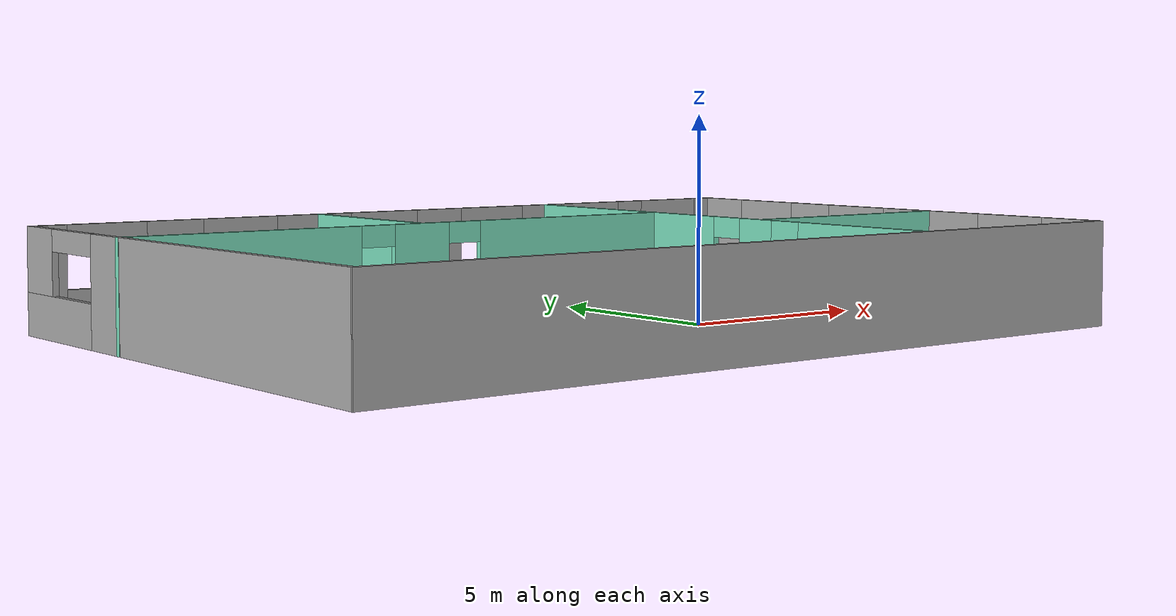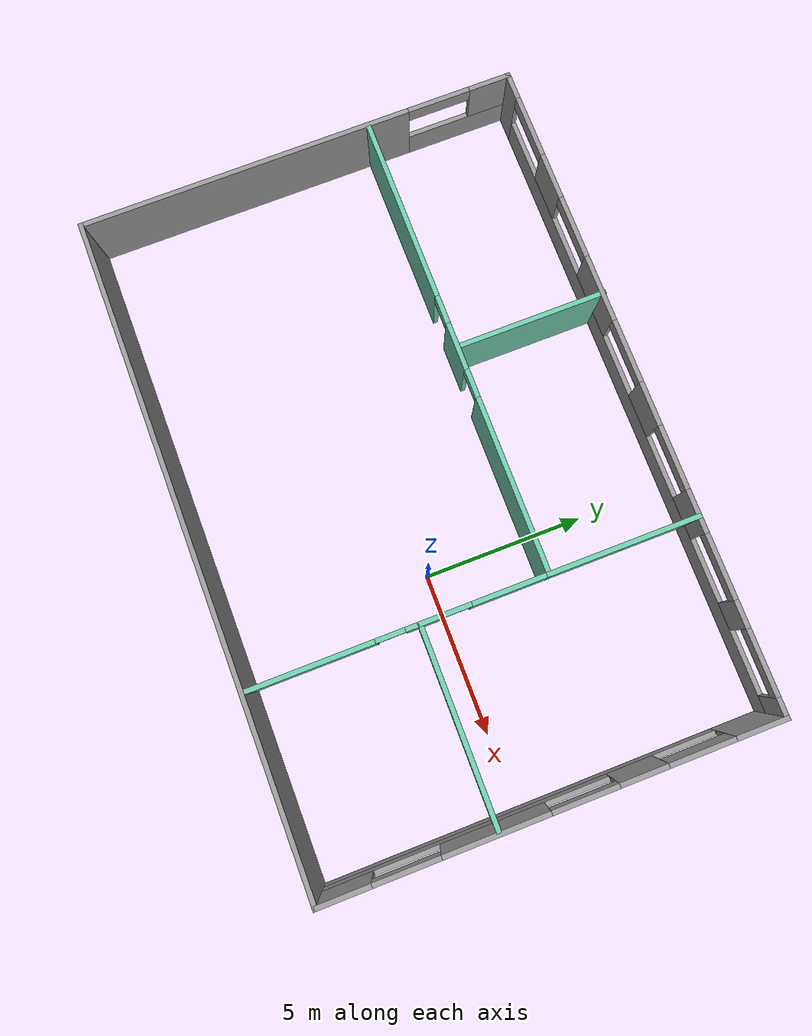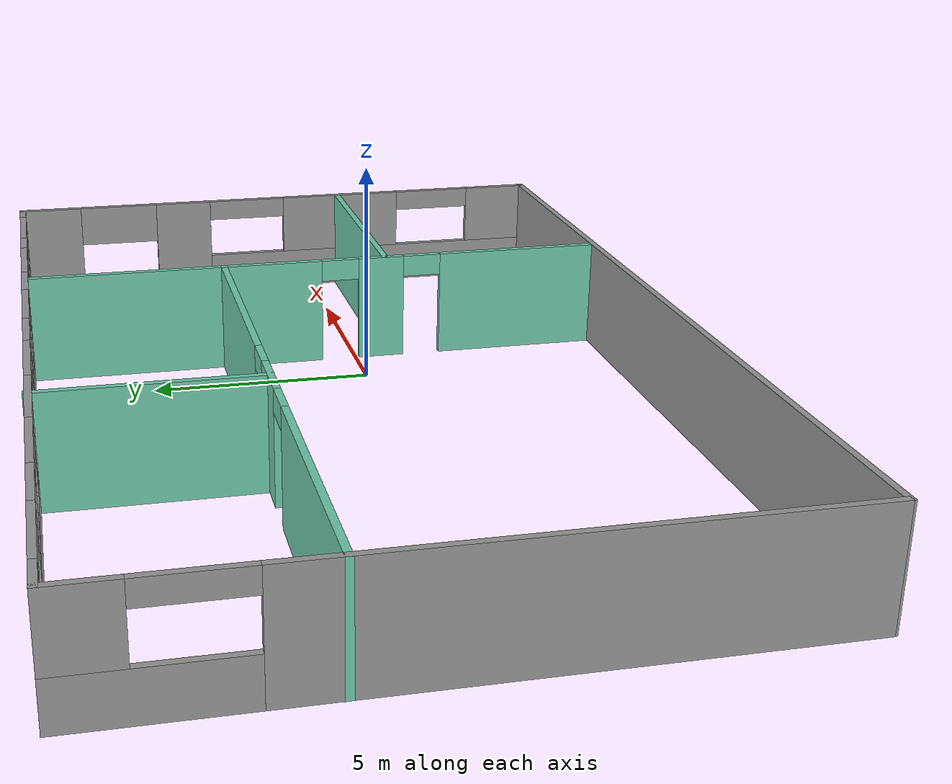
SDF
<?xml version='1.0'?>
<sdf version='1.6'>
  <model name='myBuilding'>
    <pose frame=''>-3.02862 0.882454 0 0 -0 0</pose>
    <link name='Wall_1'>
      <pose frame=''>0.002237 6.86535 0 0 -0 0</pose>
      <visual name='Wall_1_Visual_0'>
        <pose frame=''>-9.92957 0 1.25 0 -0 0</pose>
        <geometry>
          <box>
            <size>0.890861 0.15 2.5</size>
          </box>
        </geometry>
        <material>
          <script>
            <uri>file://media/materials/scripts/gazebo.material</uri>
            <name>Gazebo/Grey</name>
          </script>
          <ambient>1 1 1 1</ambient>
        </material>
        <meta>
          <layer>0</layer>
        </meta>
      </visual>
      <collision name='Wall_1_Collision_0'>
        <geometry>
          <box>
            <size>0.890861 0.15 2.5</size>
          </box>
        </geometry>
        <pose frame=''>-9.92957 0 1.25 0 -0 0</pose>
      </collision>
      <visual name='Wall_1_Visual_1'>
        <pose frame=''>0.44543 0 0.5 0 -0 0</pose>
        <geometry>
          <box>
            <size>19.8591 0.15 1</size>
          </box>
        </geometry>
        <material>
          <script>
            <uri>file://media/materials/scripts/gazebo.material</uri>
            <name>Gazebo/Grey</name>
          </script>
          <ambient>1 1 1 1</ambient>
        </material>
        <meta>
          <layer>0</layer>
        </meta>
      </visual>
      <collision name='Wall_1_Collision_1'>
        <geometry>
          <box>
            <size>19.8591 0.15 1</size>
          </box>
        </geometry>
        <pose frame=''>0.44543 0 0.5 0 -0 0</pose>
      </collision>
      <visual name='Wall_1_Visual_2'>
        <pose frame=''>-6.7459 0 1.75 0 -0 0</pose>
        <geometry>
          <box>
            <size>1.47647 0.15 1.5</size>
          </box>
        </geometry>
        <material>
          <script>
            <uri>file://media/materials/scripts/gazebo.material</uri>
            <name>Gazebo/Grey</name>
          </script>
          <ambient>1 1 1 1</ambient>
        </material>
        <meta>
          <layer>0</layer>
        </meta>
      </visual>
      <collision name='Wall_1_Collision_2'>
        <geometry>
          <box>
            <size>1.47647 0.15 1.5</size>
          </box>
        </geometry>
        <pose frame=''>-6.7459 0 1.75 0 -0 0</pose>
      </collision>
      <visual name='Wall_1_Visual_3'>
        <pose frame=''>-2.94421 0 1.75 0 -0 0</pose>
        <geometry>
          <box>
            <size>2.12691 0.15 1.5</size>
          </box>
        </geometry>
        <material>
          <script>
            <uri>file://media/materials/scripts/gazebo.material</uri>
            <name>Gazebo/Grey</name>
          </script>
          <ambient>1 1 1 1</ambient>
        </material>
        <meta>
          <layer>0</layer>
        </meta>
      </visual>
      <collision name='Wall_1_Collision_3'>
        <geometry>
          <box>
            <size>2.12691 0.15 1.5</size>
          </box>
        </geometry>
        <pose frame=''>-2.94421 0 1.75 0 -0 0</pose>
      </collision>
      <visual name='Wall_1_Visual_4'>
        <pose frame=''>0.812622 0 1.75 0 -0 0</pose>
        <geometry>
          <box>
            <size>1.38676 0.15 1.5</size>
          </box>
        </geometry>
        <material>
          <script>
            <uri>file://media/materials/scripts/gazebo.material</uri>
            <name>Gazebo/Grey</name>
          </script>
          <ambient>1 1 1 1</ambient>
        </material>
        <meta>
          <layer>0</layer>
        </meta>
      </visual>
      <collision name='Wall_1_Collision_4'>
        <geometry>
          <box>
            <size>1.38676 0.15 1.5</size>
          </box>
        </geometry>
        <pose frame=''>0.812622 0 1.75 0 -0 0</pose>
      </collision>
      <visual name='Wall_1_Visual_5'>
        <pose frame=''>4.17695 0 1.75 0 -0 0</pose>
        <geometry>
          <box>
            <size>1.3419 0.15 1.5</size>
          </box>
        </geometry>
        <material>
          <script>
            <uri>file://media/materials/scripts/gazebo.material</uri>
            <name>Gazebo/Grey</name>
          </script>
          <ambient>1 1 1 1</ambient>
        </material>
        <meta>
          <layer>0</layer>
        </meta>
      </visual>
      <collision name='Wall_1_Collision_5'>
        <geometry>
          <box>
            <size>1.3419 0.15 1.5</size>
          </box>
        </geometry>
        <pose frame=''>4.17695 0 1.75 0 -0 0</pose>
      </collision>
      <visual name='Wall_1_Visual_6'>
        <pose frame=''>7.27213 0 1.75 0 -0 0</pose>
        <geometry>
          <box>
            <size>0.848465 0.15 1.5</size>
          </box>
        </geometry>
        <material>
          <script>
            <uri>file://media/materials/scripts/gazebo.material</uri>
            <name>Gazebo/Grey</name>
          </script>
          <ambient>1 1 1 1</ambient>
        </material>
        <meta>
          <layer>0</layer>
        </meta>
      </visual>
      <collision name='Wall_1_Collision_6'>
        <geometry>
          <box>
            <size>0.848465 0.15 1.5</size>
          </box>
        </geometry>
        <pose frame=''>7.27213 0 1.75 0 -0 0</pose>
      </collision>
      <visual name='Wall_1_Visual_7'>
        <pose frame=''>10.0357 0 1.75 0 -0 0</pose>
        <geometry>
          <box>
            <size>0.678634 0.15 1.5</size>
          </box>
        </geometry>
        <material>
          <script>
            <uri>file://media/materials/scripts/gazebo.material</uri>
            <name>Gazebo/Grey</name>
          </script>
          <ambient>1 1 1 1</ambient>
        </material>
        <meta>
          <layer>0</layer>
        </meta>
      </visual>
      <collision name='Wall_1_Collision_7'>
        <geometry>
          <box>
            <size>0.678634 0.15 1.5</size>
          </box>
        </geometry>
        <pose frame=''>10.0357 0 1.75 0 -0 0</pose>
      </collision>
      <visual name='Wall_1_Visual_8'>
        <pose frame=''>-8.48414 0 2.25 0 -0 0</pose>
        <geometry>
          <box>
            <size>2 0.15 0.5</size>
          </box>
        </geometry>
        <material>
          <script>
            <uri>file://media/materials/scripts/gazebo.material</uri>
            <name>Gazebo/Grey</name>
          </script>
          <ambient>1 1 1 1</ambient>
        </material>
        <meta>
          <layer>0</layer>
        </meta>
      </visual>
      <collision name='Wall_1_Collision_8'>
        <geometry>
          <box>
            <size>2 0.15 0.5</size>
          </box>
        </geometry>
        <pose frame=''>-8.48414 0 2.25 0 -0 0</pose>
      </collision>
      <visual name='Wall_1_Visual_9'>
        <pose frame=''>-5.00767 0 2.25 0 -0 0</pose>
        <geometry>
          <box>
            <size>2 0.15 0.5</size>
          </box>
        </geometry>
        <material>
          <script>
            <uri>file://media/materials/scripts/gazebo.material</uri>
            <name>Gazebo/Grey</name>
          </script>
          <ambient>1 1 1 1</ambient>
        </material>
        <meta>
          <layer>0</layer>
        </meta>
      </visual>
      <collision name='Wall_1_Collision_9'>
        <geometry>
          <box>
            <size>2 0.15 0.5</size>
          </box>
        </geometry>
        <pose frame=''>-5.00767 0 2.25 0 -0 0</pose>
      </collision>
      <visual name='Wall_1_Visual_10'>
        <pose frame=''>-0.880757 0 2.25 0 -0 0</pose>
        <geometry>
          <box>
            <size>2 0.15 0.5</size>
          </box>
        </geometry>
        <material>
          <script>
            <uri>file://media/materials/scripts/gazebo.material</uri>
            <name>Gazebo/Grey</name>
          </script>
          <ambient>1 1 1 1</ambient>
        </material>
        <meta>
          <layer>0</layer>
        </meta>
      </visual>
      <collision name='Wall_1_Collision_10'>
        <geometry>
          <box>
            <size>2 0.15 0.5</size>
          </box>
        </geometry>
        <pose frame=''>-0.880757 0 2.25 0 -0 0</pose>
      </collision>
      <visual name='Wall_1_Visual_11'>
        <pose frame=''>2.506 0 2.25 0 -0 0</pose>
        <geometry>
          <box>
            <size>2 0.15 0.5</size>
          </box>
        </geometry>
        <material>
          <script>
            <uri>file://media/materials/scripts/gazebo.material</uri>
            <name>Gazebo/Grey</name>
          </script>
          <ambient>1 1 1 1</ambient>
        </material>
        <meta>
          <layer>0</layer>
        </meta>
      </visual>
      <collision name='Wall_1_Collision_11'>
        <geometry>
          <box>
            <size>2 0.15 0.5</size>
          </box>
        </geometry>
        <pose frame=''>2.506 0 2.25 0 -0 0</pose>
      </collision>
      <visual name='Wall_1_Visual_12'>
        <pose frame=''>5.8479 0 2.25 0 -0 0</pose>
        <geometry>
          <box>
            <size>2 0.15 0.5</size>
          </box>
        </geometry>
        <material>
          <script>
            <uri>file://media/materials/scripts/gazebo.material</uri>
            <name>Gazebo/Grey</name>
          </script>
          <ambient>1 1 1 1</ambient>
        </material>
        <meta>
          <layer>0</layer>
        </meta>
      </visual>
      <collision name='Wall_1_Collision_12'>
        <geometry>
          <box>
            <size>2 0.15 0.5</size>
          </box>
        </geometry>
        <pose frame=''>5.8479 0 2.25 0 -0 0</pose>
      </collision>
      <visual name='Wall_1_Visual_13'>
        <pose frame=''>8.69637 0 2.25 0 -0 0</pose>
        <geometry>
          <box>
            <size>2 0.15 0.5</size>
          </box>
        </geometry>
        <material>
          <script>
            <uri>file://media/materials/scripts/gazebo.material</uri>
            <name>Gazebo/Grey</name>
          </script>
          <ambient>1 1 1 1</ambient>
        </material>
        <meta>
          <layer>0</layer>
        </meta>
      </visual>
      <collision name='Wall_1_Collision_13'>
        <geometry>
          <box>
            <size>2 0.15 0.5</size>
          </box>
        </geometry>
        <pose frame=''>8.69637 0 2.25 0 -0 0</pose>
      </collision>
    </link>
    <link name='Wall_12'>
      <collision name='Wall_12_Collision'>
        <geometry>
          <box>
            <size>4.75 0.15 2.5</size>
          </box>
        </geometry>
        <pose frame=''>0 0 1.25 0 -0 0</pose>
      </collision>
      <visual name='Wall_12_Visual'>
        <pose frame=''>0 0 1.25 0 -0 0</pose>
        <geometry>
          <box>
            <size>4.75 0.15 2.5</size>
          </box>
        </geometry>
        <material>
          <script>
            <uri>file://media/materials/scripts/gazebo.material</uri>
            <name>Gazebo/Grey</name>
          </script>
          <ambient>0.435294 0.796078 0.67451 1</ambient>
        </material>
        <meta>
          <layer>0</layer>
        </meta>
      </visual>
      <pose frame=''>4.32498 4.56343 0 0 -0 1.5708</pose>
    </link>
    <link name='Wall_14'>
      <pose frame=''>4.32498 -2.28657 0 0 0 -1.5708</pose>
      <visual name='Wall_14_Visual_0'>
        <pose frame=''>-3.42191 0 1.25 0 -0 0</pose>
        <geometry>
          <box>
            <size>2.40618 0.15 2.5</size>
          </box>
        </geometry>
        <material>
          <script>
            <uri>file://media/materials/scripts/gazebo.material</uri>
            <name>Gazebo/Grey</name>
          </script>
          <ambient>0.435294 0.796078 0.67451 1</ambient>
        </material>
        <meta>
          <layer>0</layer>
        </meta>
      </visual>
      <collision name='Wall_14_Collision_0'>
        <geometry>
          <box>
            <size>2.40618 0.15 2.5</size>
          </box>
        </geometry>
        <pose frame=''>-3.42191 0 1.25 0 -0 0</pose>
      </collision>
      <visual name='Wall_14_Visual_1'>
        <pose frame=''>-0.770737 0 1.25 0 -0 0</pose>
        <geometry>
          <box>
            <size>1.09617 0.15 2.5</size>
          </box>
        </geometry>
        <material>
          <script>
            <uri>file://media/materials/scripts/gazebo.material</uri>
            <name>Gazebo/Grey</name>
          </script>
          <ambient>0.435294 0.796078 0.67451 1</ambient>
        </material>
        <meta>
          <layer>0</layer>
        </meta>
      </visual>
      <collision name='Wall_14_Collision_1'>
        <geometry>
          <box>
            <size>1.09617 0.15 2.5</size>
          </box>
        </geometry>
        <pose frame=''>-0.770737 0 1.25 0 -0 0</pose>
      </collision>
      <visual name='Wall_14_Visual_2'>
        <pose frame=''>2.65117 0 1.25 0 -0 0</pose>
        <geometry>
          <box>
            <size>3.94765 0.15 2.5</size>
          </box>
        </geometry>
        <material>
          <script>
            <uri>file://media/materials/scripts/gazebo.material</uri>
            <name>Gazebo/Grey</name>
          </script>
          <ambient>0.435294 0.796078 0.67451 1</ambient>
        </material>
        <meta>
          <layer>0</layer>
        </meta>
      </visual>
      <collision name='Wall_14_Collision_2'>
        <geometry>
          <box>
            <size>3.94765 0.15 2.5</size>
          </box>
        </geometry>
        <pose frame=''>2.65117 0 1.25 0 -0 0</pose>
      </collision>
      <visual name='Wall_14_Visual_3'>
        <pose frame=''>-1.76882 0 2.25 0 -0 0</pose>
        <geometry>
          <box>
            <size>0.9 0.15 0.5</size>
          </box>
        </geometry>
        <material>
          <script>
            <uri>file://media/materials/scripts/gazebo.material</uri>
            <name>Gazebo/Grey</name>
          </script>
          <ambient>0.435294 0.796078 0.67451 1</ambient>
        </material>
        <meta>
          <layer>0</layer>
        </meta>
      </visual>
      <collision name='Wall_14_Collision_3'>
        <geometry>
          <box>
            <size>0.9 0.15 0.5</size>
          </box>
        </geometry>
        <pose frame=''>-1.76882 0 2.25 0 -0 0</pose>
      </collision>
      <visual name='Wall_14_Visual_4'>
        <pose frame=''>0.227347 0 2.25 0 -0 0</pose>
        <geometry>
          <box>
            <size>0.9 0.15 0.5</size>
          </box>
        </geometry>
        <material>
          <script>
            <uri>file://media/materials/scripts/gazebo.material</uri>
            <name>Gazebo/Grey</name>
          </script>
          <ambient>0.435294 0.796078 0.67451 1</ambient>
        </material>
        <meta>
          <layer>0</layer>
        </meta>
      </visual>
      <collision name='Wall_14_Collision_4'>
        <geometry>
          <box>
            <size>0.9 0.15 0.5</size>
          </box>
        </geometry>
        <pose frame=''>0.227347 0 2.25 0 -0 0</pose>
      </collision>
    </link>
    <link name='Wall_16'>
      <collision name='Wall_16_Collision'>
        <geometry>
          <box>
            <size>6 0.15 2.5</size>
          </box>
        </geometry>
        <pose frame=''>0 0 1.25 0 -0 0</pose>
      </collision>
      <visual name='Wall_16_Visual'>
        <pose frame=''>0 0 1.25 0 -0 0</pose>
        <geometry>
          <box>
            <size>6 0.15 2.5</size>
          </box>
        </geometry>
        <material>
          <script>
            <uri>file://media/materials/scripts/gazebo.material</uri>
            <name>Gazebo/Grey</name>
          </script>
          <ambient>0.435294 0.796078 0.67451 1</ambient>
        </material>
        <meta>
          <layer>0</layer>
        </meta>
      </visual>
      <pose frame=''>7.2724 -1.61676 0 0 -0 0</pose>
    </link>
    <link name='Wall_2'>
      <pose frame=''>10.3022 0.007641 0 0 0 -1.5708</pose>
      <visual name='Wall_2_Visual_0'>
        <pose frame=''>-6.13719 0 1.25 0 -0 0</pose>
        <geometry>
          <box>
            <size>1.59104 0.15 2.5</size>
          </box>
        </geometry>
        <material>
          <script>
            <uri>file://media/materials/scripts/gazebo.material</uri>
            <name>Gazebo/Grey</name>
          </script>
          <ambient>1 1 1 1</ambient>
        </material>
        <meta>
          <layer>0</layer>
        </meta>
      </visual>
      <collision name='Wall_2_Collision_0'>
        <geometry>
          <box>
            <size>1.59104 0.15 2.5</size>
          </box>
        </geometry>
        <pose frame=''>-6.13719 0 1.25 0 -0 0</pose>
      </collision>
      <visual name='Wall_2_Visual_1'>
        <pose frame=''>0.79552 0 0.25 0 -0 0</pose>
        <geometry>
          <box>
            <size>12.2744 0.15 0.5</size>
          </box>
        </geometry>
        <material>
          <script>
            <uri>file://media/materials/scripts/gazebo.material</uri>
            <name>Gazebo/Grey</name>
          </script>
          <ambient>1 1 1 1</ambient>
        </material>
        <meta>
          <layer>0</layer>
        </meta>
      </visual>
      <collision name='Wall_2_Collision_1'>
        <geometry>
          <box>
            <size>12.2744 0.15 0.5</size>
          </box>
        </geometry>
        <pose frame=''>0.79552 0 0.25 0 -0 0</pose>
      </collision>
      <visual name='Wall_2_Visual_2'>
        <pose frame=''>-2.61465 0 1.5 0 -0 0</pose>
        <geometry>
          <box>
            <size>1.45404 0.15 2</size>
          </box>
        </geometry>
        <material>
          <script>
            <uri>file://media/materials/scripts/gazebo.material</uri>
            <name>Gazebo/Grey</name>
          </script>
          <ambient>1 1 1 1</ambient>
        </material>
        <meta>
          <layer>0</layer>
        </meta>
      </visual>
      <collision name='Wall_2_Collision_2'>
        <geometry>
          <box>
            <size>1.45404 0.15 2</size>
          </box>
        </geometry>
        <pose frame=''>-2.61465 0 1.5 0 -0 0</pose>
      </collision>
      <visual name='Wall_2_Visual_3'>
        <pose frame=''>2.52254 0 0.75 0 -0 0</pose>
        <geometry>
          <box>
            <size>8.82034 0.15 0.5</size>
          </box>
        </geometry>
        <material>
          <script>
            <uri>file://media/materials/scripts/gazebo.material</uri>
            <name>Gazebo/Grey</name>
          </script>
          <ambient>1 1 1 1</ambient>
        </material>
        <meta>
          <layer>0</layer>
        </meta>
      </visual>
      <collision name='Wall_2_Collision_3'>
        <geometry>
          <box>
            <size>8.82034 0.15 0.5</size>
          </box>
        </geometry>
        <pose frame=''>2.52254 0 0.75 0 -0 0</pose>
      </collision>
      <visual name='Wall_2_Visual_4'>
        <pose frame=''>1.7029 0 1.75 0 -0 0</pose>
        <geometry>
          <box>
            <size>3.18107 0.15 1.5</size>
          </box>
        </geometry>
        <material>
          <script>
            <uri>file://media/materials/scripts/gazebo.material</uri>
            <name>Gazebo/Grey</name>
          </script>
          <ambient>1 1 1 1</ambient>
        </material>
        <meta>
          <layer>0</layer>
        </meta>
      </visual>
      <collision name='Wall_2_Collision_4'>
        <geometry>
          <box>
            <size>3.18107 0.15 1.5</size>
          </box>
        </geometry>
        <pose frame=''>1.7029 0 1.75 0 -0 0</pose>
      </collision>
      <visual name='Wall_2_Visual_5'>
        <pose frame=''>6.11308 0 1.75 0 -0 0</pose>
        <geometry>
          <box>
            <size>1.63928 0.15 1.5</size>
          </box>
        </geometry>
        <material>
          <script>
            <uri>file://media/materials/scripts/gazebo.material</uri>
            <name>Gazebo/Grey</name>
          </script>
          <ambient>1 1 1 1</ambient>
        </material>
        <meta>
          <layer>0</layer>
        </meta>
      </visual>
      <collision name='Wall_2_Collision_5'>
        <geometry>
          <box>
            <size>1.63928 0.15 1.5</size>
          </box>
        </geometry>
        <pose frame=''>6.11308 0 1.75 0 -0 0</pose>
      </collision>
      <visual name='Wall_2_Visual_6'>
        <pose frame=''>-4.34167 0 2 0 -0 0</pose>
        <geometry>
          <box>
            <size>2 0.15 1</size>
          </box>
        </geometry>
        <material>
          <script>
            <uri>file://media/materials/scripts/gazebo.material</uri>
            <name>Gazebo/Grey</name>
          </script>
          <ambient>1 1 1 1</ambient>
        </material>
        <meta>
          <layer>0</layer>
        </meta>
      </visual>
      <collision name='Wall_2_Collision_6'>
        <geometry>
          <box>
            <size>2 0.15 1</size>
          </box>
        </geometry>
        <pose frame=''>-4.34167 0 2 0 -0 0</pose>
      </collision>
      <visual name='Wall_2_Visual_7'>
        <pose frame=''>-0.88763 0 2.25 0 -0 0</pose>
        <geometry>
          <box>
            <size>2 0.15 0.5</size>
          </box>
        </geometry>
        <material>
          <script>
            <uri>file://media/materials/scripts/gazebo.material</uri>
            <name>Gazebo/Grey</name>
          </script>
          <ambient>1 1 1 1</ambient>
        </material>
        <meta>
          <layer>0</layer>
        </meta>
      </visual>
      <collision name='Wall_2_Collision_7'>
        <geometry>
          <box>
            <size>2 0.15 0.5</size>
          </box>
        </geometry>
        <pose frame=''>-0.88763 0 2.25 0 -0 0</pose>
      </collision>
      <visual name='Wall_2_Visual_8'>
        <pose frame=''>4.29344 0 2.25 0 -0 0</pose>
        <geometry>
          <box>
            <size>2 0.15 0.5</size>
          </box>
        </geometry>
        <material>
          <script>
            <uri>file://media/materials/scripts/gazebo.material</uri>
            <name>Gazebo/Grey</name>
          </script>
          <ambient>1 1 1 1</ambient>
        </material>
        <meta>
          <layer>0</layer>
        </meta>
      </visual>
      <collision name='Wall_2_Collision_8'>
        <geometry>
          <box>
            <size>2 0.15 0.5</size>
          </box>
        </geometry>
        <pose frame=''>4.29344 0 2.25 0 -0 0</pose>
      </collision>
    </link>
    <link name='Wall_3'>
      <collision name='Wall_3_Collision'>
        <geometry>
          <box>
            <size>20.75 0.15 2.5</size>
          </box>
        </geometry>
        <pose frame=''>0 0 1.25 0 -0 0</pose>
      </collision>
      <visual name='Wall_3_Visual'>
        <pose frame=''>0 0 1.25 0 -0 0</pose>
        <geometry>
          <box>
            <size>20.75 0.15 2.5</size>
          </box>
        </geometry>
        <material>
          <script>
            <uri>file://media/materials/scripts/gazebo.material</uri>
            <name>Gazebo/Grey</name>
          </script>
          <ambient>1 1 1 1</ambient>
        </material>
        <meta>
          <layer>0</layer>
        </meta>
      </visual>
      <pose frame=''>0.002237 -6.89493 0 0 -0 3.14159</pose>
    </link>
    <link name='Wall_4'>
      <pose frame=''>-10.2978 0.007641 0 0 -0 1.5708</pose>
      <visual name='Wall_4_Visual_0'>
        <pose frame=''>-1.68338 0 1.25 0 -0 0</pose>
        <geometry>
          <box>
            <size>10.4987 0.15 2.5</size>
          </box>
        </geometry>
        <material>
          <script>
            <uri>file://media/materials/scripts/gazebo.material</uri>
            <name>Gazebo/Grey</name>
          </script>
          <ambient>1 1 1 1</ambient>
        </material>
        <meta>
          <layer>0</layer>
        </meta>
      </visual>
      <collision name='Wall_4_Collision_0'>
        <geometry>
          <box>
            <size>10.4987 0.15 2.5</size>
          </box>
        </geometry>
        <pose frame=''>-1.68338 0 1.25 0 -0 0</pose>
      </collision>
      <visual name='Wall_4_Visual_1'>
        <pose frame=''>5.24934 0 0.5 0 -0 0</pose>
        <geometry>
          <box>
            <size>3.36675 0.15 1</size>
          </box>
        </geometry>
        <material>
          <script>
            <uri>file://media/materials/scripts/gazebo.material</uri>
            <name>Gazebo/Grey</name>
          </script>
          <ambient>1 1 1 1</ambient>
        </material>
        <meta>
          <layer>0</layer>
        </meta>
      </visual>
      <collision name='Wall_4_Collision_1'>
        <geometry>
          <box>
            <size>3.36675 0.15 1</size>
          </box>
        </geometry>
        <pose frame=''>5.24934 0 0.5 0 -0 0</pose>
      </collision>
      <visual name='Wall_4_Visual_2'>
        <pose frame=''>6.24934 0 1.75 0 -0 0</pose>
        <geometry>
          <box>
            <size>1.36675 0.15 1.5</size>
          </box>
        </geometry>
        <material>
          <script>
            <uri>file://media/materials/scripts/gazebo.material</uri>
            <name>Gazebo/Grey</name>
          </script>
          <ambient>1 1 1 1</ambient>
        </material>
        <meta>
          <layer>0</layer>
        </meta>
      </visual>
      <collision name='Wall_4_Collision_2'>
        <geometry>
          <box>
            <size>1.36675 0.15 1.5</size>
          </box>
        </geometry>
        <pose frame=''>6.24934 0 1.75 0 -0 0</pose>
      </collision>
      <visual name='Wall_4_Visual_3'>
        <pose frame=''>4.56596 0 2.25 0 -0 0</pose>
        <geometry>
          <box>
            <size>2 0.15 0.5</size>
          </box>
        </geometry>
        <material>
          <script>
            <uri>file://media/materials/scripts/gazebo.material</uri>
            <name>Gazebo/Grey</name>
          </script>
          <ambient>1 1 1 1</ambient>
        </material>
        <meta>
          <layer>0</layer>
        </meta>
      </visual>
      <collision name='Wall_4_Collision_3'>
        <geometry>
          <box>
            <size>2 0.15 0.5</size>
          </box>
        </geometry>
        <pose frame=''>4.56596 0 2.25 0 -0 0</pose>
      </collision>
    </link>
    <link name='Wall_6'>
      <pose frame=''>-3.00224 2.26527 0 0 -0 0</pose>
      <visual name='Wall_6_Visual_0'>
        <pose frame=''>-4.40945 0 1.25 0 -0 0</pose>
        <geometry>
          <box>
            <size>5.93111 0.15 2.5</size>
          </box>
        </geometry>
        <material>
          <script>
            <uri>file://media/materials/scripts/gazebo.material</uri>
            <name>Gazebo/Grey</name>
          </script>
          <ambient>0.435294 0.796078 0.67451 1</ambient>
        </material>
        <meta>
          <layer>0</layer>
        </meta>
      </visual>
      <collision name='Wall_6_Collision_0'>
        <geometry>
          <box>
            <size>5.93111 0.15 2.5</size>
          </box>
        </geometry>
        <pose frame=''>-4.40945 0 1.25 0 -0 0</pose>
      </collision>
      <visual name='Wall_6_Visual_1'>
        <pose frame=''>0.20605 0 1.25 0 -0 0</pose>
        <geometry>
          <box>
            <size>1.49989 0.15 2.5</size>
          </box>
        </geometry>
        <material>
          <script>
            <uri>file://media/materials/scripts/gazebo.material</uri>
            <name>Gazebo/Grey</name>
          </script>
          <ambient>0.435294 0.796078 0.67451 1</ambient>
        </material>
        <meta>
          <layer>0</layer>
        </meta>
      </visual>
      <collision name='Wall_6_Collision_1'>
        <geometry>
          <box>
            <size>1.49989 0.15 2.5</size>
          </box>
        </geometry>
        <pose frame=''>0.20605 0 1.25 0 -0 0</pose>
      </collision>
      <visual name='Wall_6_Visual_2'>
        <pose frame=''>4.6155 0 1.25 0 -0 0</pose>
        <geometry>
          <box>
            <size>5.51901 0.15 2.5</size>
          </box>
        </geometry>
        <material>
          <script>
            <uri>file://media/materials/scripts/gazebo.material</uri>
            <name>Gazebo/Grey</name>
          </script>
          <ambient>0.435294 0.796078 0.67451 1</ambient>
        </material>
        <meta>
          <layer>0</layer>
        </meta>
      </visual>
      <collision name='Wall_6_Collision_2'>
        <geometry>
          <box>
            <size>5.51901 0.15 2.5</size>
          </box>
        </geometry>
        <pose frame=''>4.6155 0 1.25 0 -0 0</pose>
      </collision>
      <visual name='Wall_6_Visual_3'>
        <pose frame=''>-0.993894 0 2.25 0 -0 0</pose>
        <geometry>
          <box>
            <size>0.9 0.15 0.5</size>
          </box>
        </geometry>
        <material>
          <script>
            <uri>file://media/materials/scripts/gazebo.material</uri>
            <name>Gazebo/Grey</name>
          </script>
          <ambient>0.435294 0.796078 0.67451 1</ambient>
        </material>
        <meta>
          <layer>0</layer>
        </meta>
      </visual>
      <collision name='Wall_6_Collision_3'>
        <geometry>
          <box>
            <size>0.9 0.15 0.5</size>
          </box>
        </geometry>
        <pose frame=''>-0.993894 0 2.25 0 -0 0</pose>
      </collision>
      <visual name='Wall_6_Visual_4'>
        <pose frame=''>1.40599 0 2.25 0 -0 0</pose>
        <geometry>
          <box>
            <size>0.9 0.15 0.5</size>
          </box>
        </geometry>
        <material>
          <script>
            <uri>file://media/materials/scripts/gazebo.material</uri>
            <name>Gazebo/Grey</name>
          </script>
          <ambient>0.435294 0.796078 0.67451 1</ambient>
        </material>
        <meta>
          <layer>0</layer>
        </meta>
      </visual>
      <collision name='Wall_6_Collision_4'>
        <geometry>
          <box>
            <size>0.9 0.15 0.5</size>
          </box>
        </geometry>
        <pose frame=''>1.40599 0 2.25 0 -0 0</pose>
      </collision>
    </link>
    <link name='Wall_9'>
      <collision name='Wall_9_Collision'>
        <geometry>
          <box>
            <size>4.75 0.15 2.5</size>
          </box>
        </geometry>
        <pose frame=''>0 0 1.25 0 -0 0</pose>
      </collision>
      <visual name='Wall_9_Visual'>
        <pose frame=''>0 0 1.25 0 -0 0</pose>
        <geometry>
          <box>
            <size>4.75 0.15 2.5</size>
          </box>
        </geometry>
        <material>
          <script>
            <uri>file://media/materials/scripts/gazebo.material</uri>
            <name>Gazebo/Grey</name>
          </script>
          <ambient>0.435294 0.796078 0.67451 1</ambient>
        </material>
        <meta>
          <layer>0</layer>
        </meta>
      </visual>
      <pose frame=''>-2.77747 4.59493 0 0 -0 1.5708</pose>
    </link>
    <static>1</static>
  </model>
</sdf>
